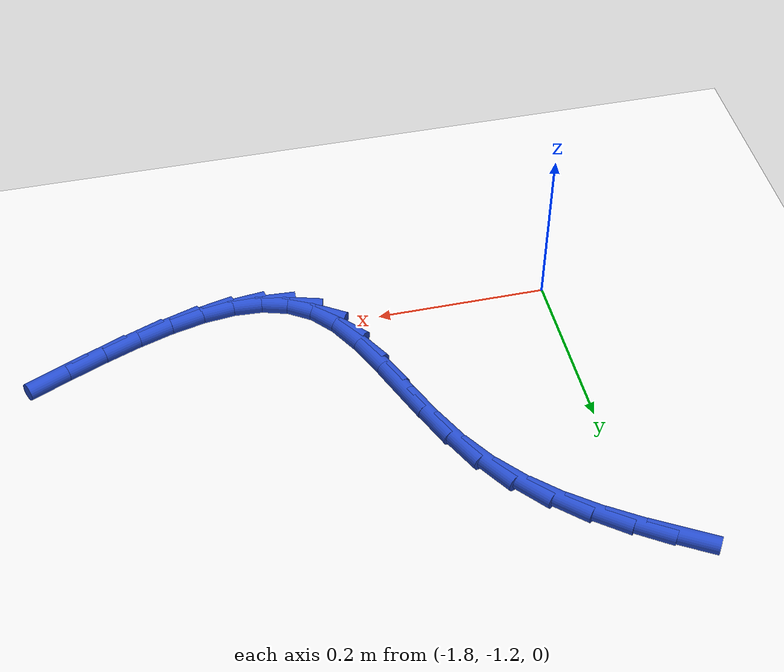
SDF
<sdf version="1.6">
 <world name="default">
  <model name="ground_plane">
   <static>1</static>
   <link name="link">
    <collision name="collision">
     <geometry><plane><normal>0 0 1</normal><size>100 100</size></plane></geometry>
     <surface><friction><ode><mu>100</mu><mu2>50</mu2></ode></friction></surface>
    </collision>
    <visual name="visual">
     <cast_shadows>0</cast_shadows>
     <geometry><plane><normal>0 0 1</normal><size>100 100</size></plane></geometry>
     <material>
      <script><uri>file://media/materials/scripts/gazebo.material</uri><name>Gazebo/WhiteGlow</name></script>
     </material>
    </visual>
   </link>
  </model>
  <model name="line">
   <link name="link_108">
    <pose>-1.8354678547006984 -0.809411399829119 0.01 0 1.57 -0.5355126685599005</pose>
    <collision name="collision">
     <geometry><cylinder><radius>0.01</radius><length>0.08</length></cylinder></geometry>
    </collision>
    <visual name="visual">
     <material>
      <script><name>Gazebo/Blue</name><uri>file://media/materials/scripts/gazebo.material</uri></script>
     </material>
     <geometry><cylinder><radius>0.01</radius><length>0.08</length></cylinder></geometry>
    </visual>
   </link>
   <link name="link_109">
    <pose>-1.796568927760245 -0.8324919320554737 0.01 0 1.57 -0.5872374559952641</pose>
    <collision name="collision">
     <geometry><cylinder><radius>0.01</radius><length>0.08</length></cylinder></geometry>
    </collision>
    <visual name="visual">
     <material>
      <script><name>Gazebo/Blue</name><uri>file://media/materials/scripts/gazebo.material</uri></script>
     </material>
     <geometry><cylinder><radius>0.01</radius><length>0.08</length></cylinder></geometry>
    </visual>
   </link>
   <link name="link_110">
    <pose>-1.7591375998145964 -0.8574048021744849 0.01 0 1.57 -0.660275830798041</pose>
    <collision name="collision">
     <geometry><cylinder><radius>0.01</radius><length>0.08</length></cylinder></geometry>
    </collision>
    <visual name="visual">
     <material>
      <script><name>Gazebo/Blue</name><uri>file://media/materials/scripts/gazebo.material</uri></script>
     </material>
     <geometry><cylinder><radius>0.01</radius><length>0.08</length></cylinder></geometry>
    </visual>
   </link>
   <link name="link_111">
    <pose>-1.7238945549061602 -0.8847726823307447 0.01 0 1.57 -0.7553255769380312</pose>
    <collision name="collision">
     <geometry><cylinder><radius>0.01</radius><length>0.08</length></cylinder></geometry>
    </collision>
    <visual name="visual">
     <material>
      <script><name>Gazebo/Blue</name><uri>file://media/materials/scripts/gazebo.material</uri></script>
     </material>
     <geometry><cylinder><radius>0.01</radius><length>0.08</length></cylinder></geometry>
    </visual>
   </link>
   <link name="link_112">
    <pose>-1.6915604770773431 -0.9152182446688475 0.01 0 1.57 -0.8717613288018724</pose>
    <collision name="collision">
     <geometry><cylinder><radius>0.01</radius><length>0.08</length></cylinder></geometry>
    </collision>
    <visual name="visual">
     <material>
      <script><name>Gazebo/Blue</name><uri>file://media/materials/scripts/gazebo.material</uri></script>
     </material>
     <geometry><cylinder><radius>0.01</radius><length>0.08</length></cylinder></geometry>
    </visual>
   </link>
   <link name="link_113">
    <pose>-1.6628560503705518 -0.9493641613333863 0.01 0 1.57 -1.005095622996058</pose>
    <collision name="collision">
     <geometry><cylinder><radius>0.01</radius><length>0.08</length></cylinder></geometry>
    </collision>
    <visual name="visual">
     <material>
      <script><name>Gazebo/Blue</name><uri>file://media/materials/scripts/gazebo.material</uri></script>
     </material>
     <geometry><cylinder><radius>0.01</radius><length>0.08</length></cylinder></geometry>
    </visual>
   </link>
   <link name="link_114">
    <pose>-1.6384633613197126 -0.9877827115263037 0.01 0 1.57 -1.1178236417012073</pose>
    <collision name="collision">
     <geometry><cylinder><radius>0.01</radius><length>0.08</length></cylinder></geometry>
    </collision>
    <visual name="visual">
     <material>
      <script><name>Gazebo/Blue</name><uri>file://media/materials/scripts/gazebo.material</uri></script>
     </material>
     <geometry><cylinder><radius>0.01</radius><length>0.08</length></cylinder></geometry>
    </visual>
   </link>
   <link name="link_115">
    <pose>-1.618050343779697 -1.0297220957769826 0.01 0 1.57 -1.1795628692364666</pose>
    <collision name="collision">
     <geometry><cylinder><radius>0.01</radius><length>0.08</length></cylinder></geometry>
    </collision>
    <visual name="visual">
     <material>
      <script><name>Gazebo/Blue</name><uri>file://media/materials/scripts/gazebo.material</uri></script>
     </material>
     <geometry><cylinder><radius>0.01</radius><length>0.08</length></cylinder></geometry>
    </visual>
   </link>
   <link name="link_116">
    <pose>-1.6001951445820333 -1.0730076876726151 0.01 0 1.57 -1.1939932028512725</pose>
    <collision name="collision">
     <geometry><cylinder><radius>0.01</radius><length>0.08</length></cylinder></geometry>
    </collision>
    <visual name="visual">
     <material>
      <script><name>Gazebo/Blue</name><uri>file://media/materials/scripts/gazebo.material</uri></script>
     </material>
     <geometry><cylinder><radius>0.01</radius><length>0.08</length></cylinder></geometry>
    </visual>
   </link>
   <link name="link_117">
    <pose>-1.5834221616428434 -1.1153946861669006 0.01 0 1.57 -1.1584438056354154</pose>
    <collision name="collision">
     <geometry><cylinder><radius>0.01</radius><length>0.08</length></cylinder></geometry>
    </collision>
    <visual name="visual">
     <material>
      <script><name>Gazebo/Blue</name><uri>file://media/materials/scripts/gazebo.material</uri></script>
     </material>
     <geometry><cylinder><radius>0.01</radius><length>0.08</length></cylinder></geometry>
    </visual>
   </link>
   <link name="link_118">
    <pose>-1.5662557928782481 -1.1546382902135361 0.01 0 1.57 -1.0585933591984897</pose>
    <collision name="collision">
     <geometry><cylinder><radius>0.01</radius><length>0.08</length></cylinder></geometry>
    </collision>
    <visual name="visual">
     <material>
      <script><name>Gazebo/Blue</name><uri>file://media/materials/scripts/gazebo.material</uri></script>
     </material>
     <geometry><cylinder><radius>0.01</radius><length>0.08</length></cylinder></geometry>
    </visual>
   </link>
   <link name="link_119">
    <pose>-1.5472204362043709 -1.1884936987662205 0.01 0 1.57 -0.864432335667104</pose>
    <collision name="collision">
     <geometry><cylinder><radius>0.01</radius><length>0.08</length></cylinder></geometry>
    </collision>
    <visual name="visual">
     <material>
      <script><name>Gazebo/Blue</name><uri>file://media/materials/scripts/gazebo.material</uri></script>
     </material>
     <geometry><cylinder><radius>0.01</radius><length>0.08</length></cylinder></geometry>
    </visual>
   </link>
   <link name="link_120">
    <pose>-1.5248430539444213 -1.2147204899673203 0.01 0 1.57 -0.5749237084762882</pose>
    <collision name="collision">
     <geometry><cylinder><radius>0.01</radius><length>0.08</length></cylinder></geometry>
    </collision>
    <visual name="visual">
     <material>
      <script><name>Gazebo/Blue</name><uri>file://media/materials/scripts/gazebo.material</uri></script>
     </material>
     <geometry><cylinder><radius>0.01</radius><length>0.08</length></cylinder></geometry>
    </visual>
   </link>
   <link name="link_121">
    <pose>-1.4981860280894175 -1.2319925678288062 0.01 0 1.57 -0.28604440893546945</pose>
    <collision name="collision">
     <geometry><cylinder><radius>0.01</radius><length>0.08</length></cylinder></geometry>
    </collision>
    <visual name="visual">
     <material>
      <script><name>Gazebo/Blue</name><uri>file://media/materials/scripts/gazebo.material</uri></script>
     </material>
     <geometry><cylinder><radius>0.01</radius><length>0.08</length></cylinder></geometry>
    </visual>
   </link>
   <link name="link_122">
    <pose>-1.4675023137763414 -1.2410169552270924 0.01 0 1.57 -0.05120617701289027</pose>
    <collision name="collision">
     <geometry><cylinder><radius>0.01</radius><length>0.08</length></cylinder></geometry>
    </collision>
    <visual name="visual">
     <material>
      <script><name>Gazebo/Blue</name><uri>file://media/materials/scripts/gazebo.material</uri></script>
     </material>
     <geometry><cylinder><radius>0.01</radius><length>0.08</length></cylinder></geometry>
    </visual>
   </link>
   <link name="link_123">
    <pose>-1.433205337478921 -1.242774708854195 0.01 0 1.57 0.12017040651906373</pose>
    <collision name="collision">
     <geometry><cylinder><radius>0.01</radius><length>0.08</length></cylinder></geometry>
    </collision>
    <visual name="visual">
     <material>
      <script><name>Gazebo/Blue</name><uri>file://media/materials/scripts/gazebo.material</uri></script>
     </material>
     <geometry><cylinder><radius>0.01</radius><length>0.08</length></cylinder></geometry>
    </visual>
   </link>
   <link name="link_124">
    <pose>-1.3957085256708839 -1.2382468854021302 0.01 0 1.57 0.23939954270040353</pose>
    <collision name="collision">
     <geometry><cylinder><radius>0.01</radius><length>0.08</length></cylinder></geometry>
    </collision>
    <visual name="visual">
     <material>
      <script><name>Gazebo/Blue</name><uri>file://media/materials/scripts/gazebo.material</uri></script>
     </material>
     <geometry><cylinder><radius>0.01</radius><length>0.08</length></cylinder></geometry>
    </visual>
   </link>
   <link name="link_125">
    <pose>-1.3554253048259586 -1.2284145415629146 0.01 0 1.57 0.320422276701738</pose>
    <collision name="collision">
     <geometry><cylinder><radius>0.01</radius><length>0.08</length></cylinder></geometry>
    </collision>
    <visual name="visual">
     <material>
      <script><name>Gazebo/Blue</name><uri>file://media/materials/scripts/gazebo.material</uri></script>
     </material>
     <geometry><cylinder><radius>0.01</radius><length>0.08</length></cylinder></geometry>
    </visual>
   </link>
   <link name="link_126">
    <pose>-1.312769101417872 -1.2142587340285635 0.01 0 1.57 0.3737625298011524</pose>
    <collision name="collision">
     <geometry><cylinder><radius>0.01</radius><length>0.08</length></cylinder></geometry>
    </collision>
    <visual name="visual">
     <material>
      <script><name>Gazebo/Blue</name><uri>file://media/materials/scripts/gazebo.material</uri></script>
     </material>
     <geometry><cylinder><radius>0.01</radius><length>0.08</length></cylinder></geometry>
    </visual>
   </link>
   <link name="link_127">
    <pose>-1.268153341920353 -1.1967605194910933 0.01 0 1.57 0.40628000084960036</pose>
    <collision name="collision">
     <geometry><cylinder><radius>0.01</radius><length>0.08</length></cylinder></geometry>
    </collision>
    <visual name="visual">
     <material>
      <script><name>Gazebo/Blue</name><uri>file://media/materials/scripts/gazebo.material</uri></script>
     </material>
     <geometry><cylinder><radius>0.01</radius><length>0.08</length></cylinder></geometry>
    </visual>
   </link>
   <link name="link_128">
    <pose>-1.2219914528071294 -1.1769009546425204 0.01 0 1.57 0.42210271875089794</pose>
    <collision name="collision">
     <geometry><cylinder><radius>0.01</radius><length>0.08</length></cylinder></geometry>
    </collision>
    <visual name="visual">
     <material>
      <script><name>Gazebo/Blue</name><uri>file://media/materials/scripts/gazebo.material</uri></script>
     </material>
     <geometry><cylinder><radius>0.01</radius><length>0.08</length></cylinder></geometry>
    </visual>
   </link>
  </model>
 </world>
</sdf>
